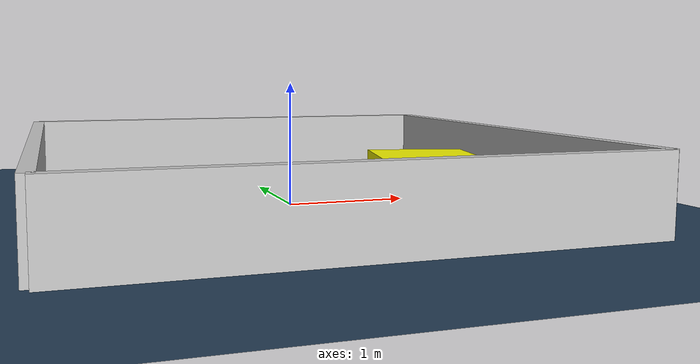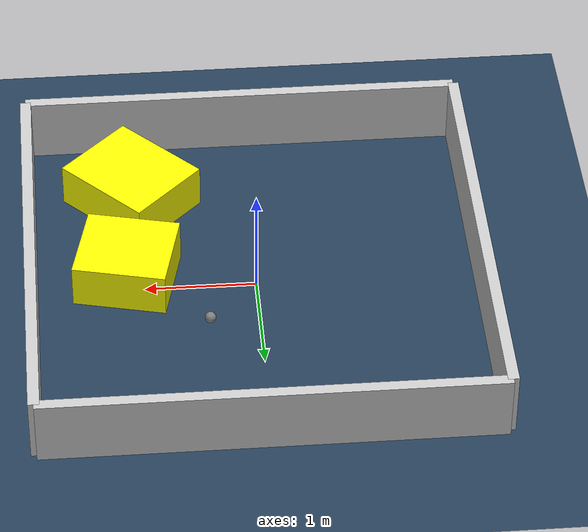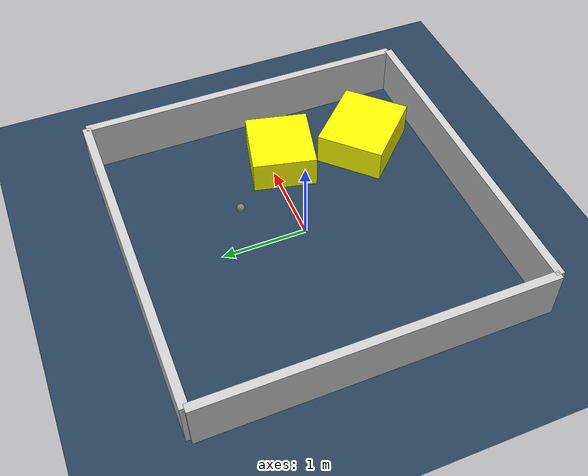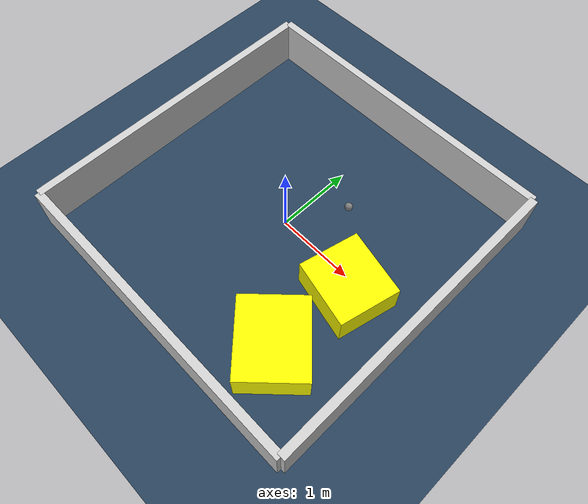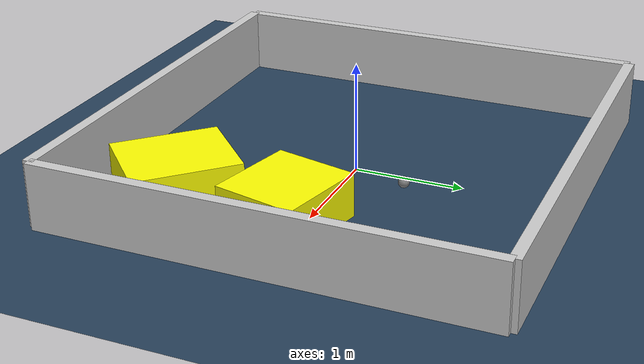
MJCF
<?xml version="1.0" ?>
<mujoco model="generated_environment">
  <option timestep="0.01" integrator="RK4" cone="elliptic"/>
  <default>
    <geom density="1"/>
  </default>
  <asset>
    <texture builtin="gradient" height="3072" rgb1="0.3 0.5 0.7" rgb2="0 0 0" type="skybox" width="512"/>
    <texture builtin="checker" height="300" mark="edge" markrgb="0.8 0.8 0.8" name="groundplane" rgb1="0.2 0.3 0.4" rgb2="0.1 0.2 0.3" type="2d" width="300"/>
    <material name="groundplane" reflectance="0.2" texrepeat="5 5" texture="groundplane" texuniform="true"/>
    <material name="robot" rgba="0.0 1.0 0.0 1"/>
  </asset>
  <worldbody>
    <light dir="0 0 -1" directional="true" pos="0 0 1.5"/>
    <geom condim="4" friction="1.0 0.005 0.001" material="groundplane" name="floor" size="0 0 0.05" type="plane"/>
    <body name="walls">
      <geom name="wall_1" condim="4" pos="-2.0 0.0 0.3" rgba="0.800000011920929 0.800000011920929 0.800000011920929 1.0" size="0.05 2.0 0.3" type="box"/>
      <geom name="wall_2" condim="4" pos="2.0 0.0 0.3" rgba="0.800000011920929 0.800000011920929 0.800000011920929 1.0" size="0.05 2.0 0.3" type="box"/>
      <geom name="wall_3" condim="4" pos="0.0 -2.0 0.3" rgba="0.800000011920929 0.800000011920929 0.800000011920929 1.0" size="2.0 0.05 0.3" type="box"/>
      <geom name="wall_4" condim="4" pos="0.0 2.0 0.3" rgba="0.800000011920929 0.800000011920929 0.800000011920929 1.0" size="2.0 0.05 0.3" type="box"/>
    </body>
    <body name="robot">
      <joint name="joint_x" type="slide" pos="0 0 0" axis="1 0 0"/>
      <joint name="joint_y" type="slide" pos="0 0 0" axis="0 1 0"/>
      <geom name="robot" type="sphere" pos="0.4488763879858988 0.6209146039955185 0.2" size="0.05" mass="5." friction="1.0 0.005 0.0001" condim="4"/>
      <site name="sensor_ball"/>
    </body>
    <body name="obstacle_1_movable">
      <geom name="obstacle_1_movable" condim="4" pos="1.0595242804269676 -1.2136107494126818 0.2" euler="0 0 224.551545228711" friction="1.0 0.005 0.001" rgba="1 1 0 1" size="0.40900696105964135 0.48071615746095664 0.2" type="box" mass="0.1"/>
      <joint type="free"/>
    </body>
    <body name="obstacle_2_movable">
      <geom name="obstacle_2_movable" condim="4" pos="1.147489863260319 -0.14460899738210808 0.2" euler="0 0 346.8728193221895" friction="1.0 0.005 0.001" rgba="1 1 0 1" size="0.4179858951625395 0.3830022129902608 0.2" type="box" mass="0.1"/>
      <joint type="free"/>
    </body>
  </worldbody>
  <actuator>
    <motor name="actuator_x" joint="joint_x" gear="1" ctrlrange="-1 1"/>
    <motor name="actuator_y" joint="joint_y" gear="1" ctrlrange="-1 1"/>
  </actuator>
</mujoco>
